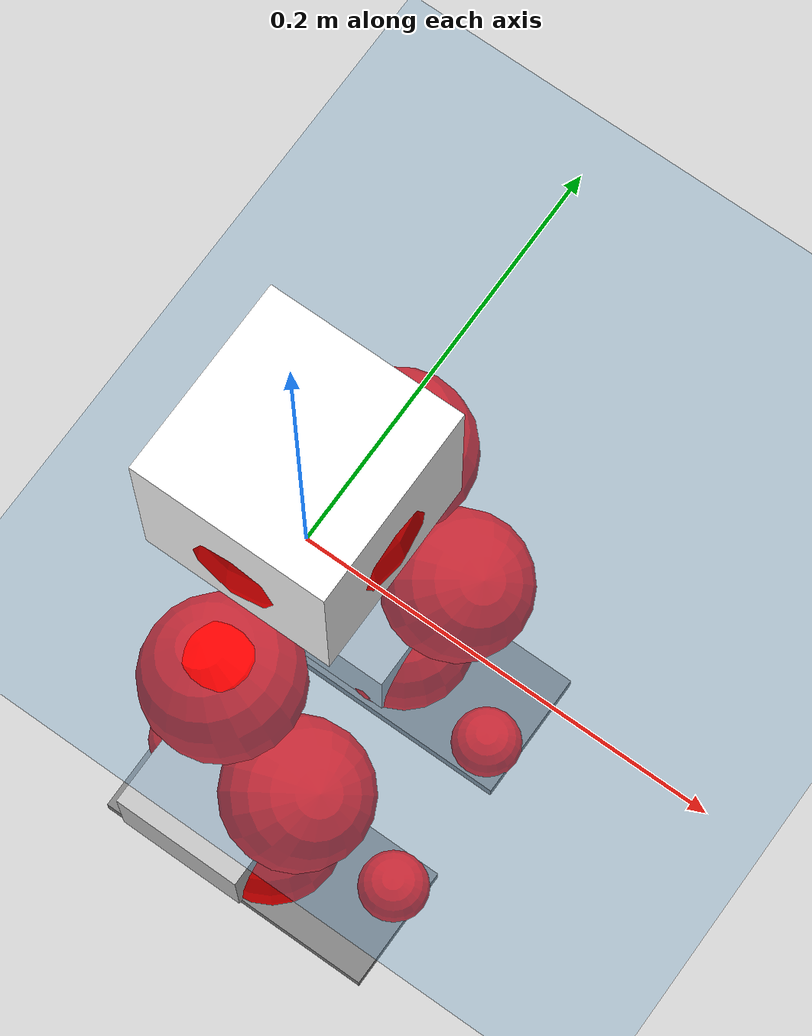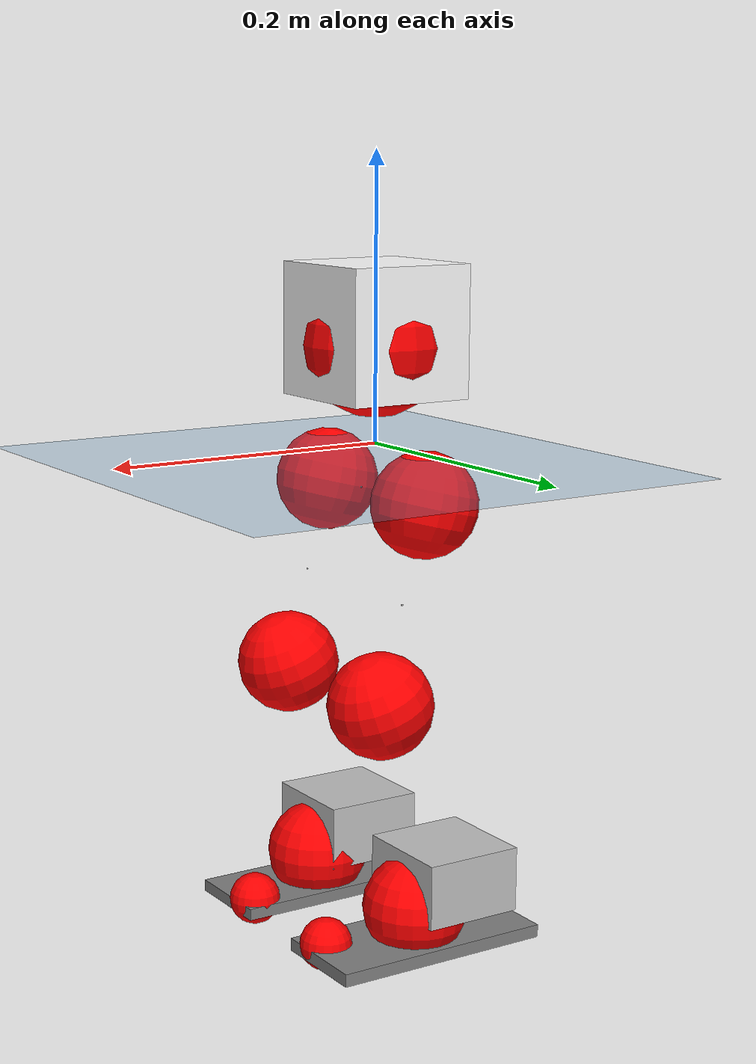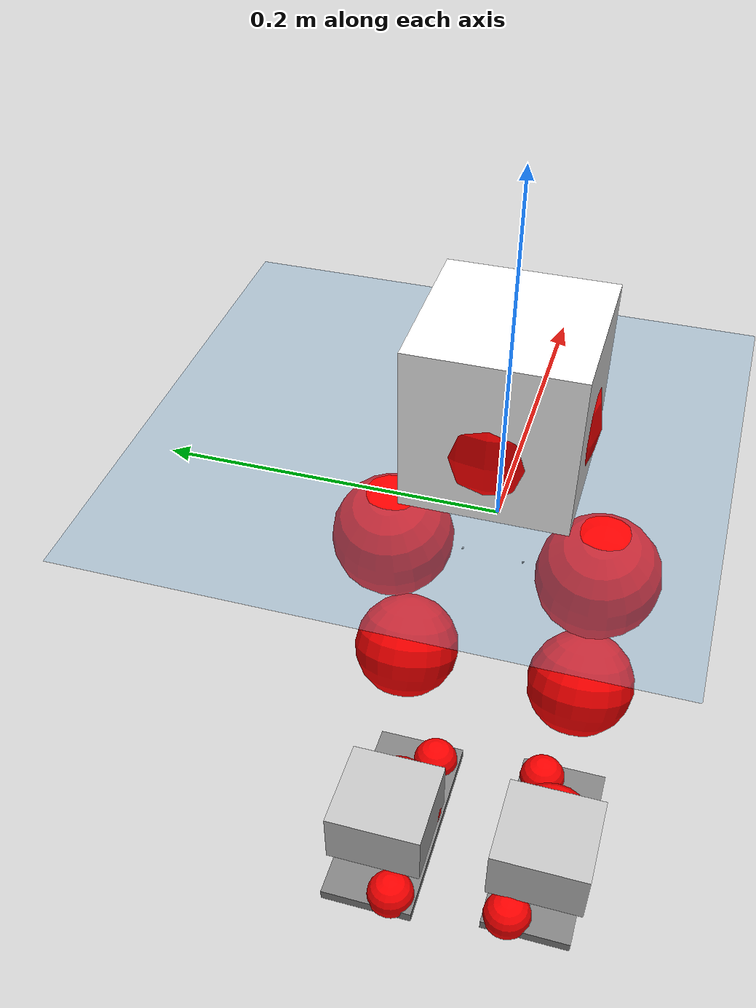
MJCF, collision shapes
<mujoco model="pi_12dof_release_v1">
  <compiler angle="radian" assetdir="assets" balanceinertia="true" inertiafromgeom="false"/>

  <option timestep="0.005" density="1.2" viscosity="2e-05"/>

  <size nkey="1"/>

  <visual>
    <quality shadowsize="8192"/>
    <map shadowclip="0.5"/>
  </visual>

  <default>
    <default class="/">
      <joint armature="0.01" damping="0.01" frictionloss="0.01"/>
      <geom contype="0" conaffinity="0" group="1" solref="-1000 -80"/>
      <site size="0.01 0.005 0.005" group="5"/>
      <general forcelimited="true" biastype="affine" gainprm="20" biasprm="0 -20 -0.5"/>
      <default class="foot">
        <geom size="0.0845 0.036 0.005" type="box" condim="6" group="4" priority="1" friction="0.9 0.2 0.2" solimp="0.015 1 0.005"/>
      </default>
      <default class="reward_collision_sphere">
        <geom group="5" rgba="1 0 0 1"/>
      </default>
    </default>
  </default>

  <asset>
    <texture type="skybox" colorspace="auto" name="//unnamed_texture_0" builtin="gradient" rgb1="0.95 0.95 0.95" rgb2="0.95 0.95 0.95" width="100" height="600"/>
    <texture type="2d" colorspace="auto" name="texplane" builtin="checker" rgb1="0.345 0.575 0.748" rgb2="0.345 0.575 0.748" markrgb="1 1 1" width="512" height="512"/>
    <material name="MatPlane" class="/" texture="texplane" texuniform="true" texrepeat="2 2" specular="0.9"/>
    <mesh name="baselink_1" class="/" file="baselink_1.STL"/>
    <mesh name="r_hip_pitch_link" class="/" file="r_hip_pitch_link.STL"/>
    <mesh name="r_hip_roll_link" class="/" file="r_hip_roll_link.STL"/>
    <mesh name="r_thigh_link" class="/" file="r_thigh_link.STL"/>
    <mesh name="r_calf_link" class="/" file="r_calf_link.STL"/>
    <mesh name="r_ankle_pitch_link" class="/" file="r_ankle_pitch_link.STL"/>
    <mesh name="r_ankle_roll_link" class="/" file="r_ankle_roll_link.STL"/>
    <mesh name="l_hip_pitch_link" class="/" file="l_hip_pitch_link.STL"/>
    <mesh name="l_hip_roll_link" class="/" file="l_hip_roll_link.STL"/>
    <mesh name="l_thigh_link" class="/" file="l_thigh_link.STL"/>
    <mesh name="l_calf_link" class="/" file="l_calf_link.STL"/>
    <mesh name="l_ankle_pitch_link" class="/" file="l_ankle_pitch_link.STL"/>
    <mesh name="l_ankle_roll_link" class="/" file="l_ankle_roll_link.STL"/>
  </asset>

  <worldbody>
    <geom name="floor" class="/" size="100 100 0.125" type="plane" group="0" material="MatPlane"/>
    <light name="toplight_shadow" class="/" pos="0 0 5" dir="0.0990148 0.0990148 -0.990148" type="directional" ambient="0.04 0.04 0.04" diffuse="0.55 0.55 0.55" specular="0.12 0.12 0.12"/>
    <light name="toplight_fill" class="/" pos="0 0 5" dir="0.0990148 0.0990148 -0.990148" type="directional" castshadow="false" ambient="0.04 0.04 0.04" diffuse="0.3 0.3 0.3" specular="0.08 0.08 0.08"/>
    <body name="trunk" pos="8.13093e-05 7.29697e-05 -0.000383208" quat="1 -1.30562e-05 -6.84762e-05 -1.58918e-05">
      <inertial pos="0.00269266 0.00131038 0.0408293" quat="0.695231 0.00992667 0.0092064 0.718659" mass="1.67422" diaginertia="0.00850469 0.0028827 0.00394823"/>
      <joint name="//unnamed_joint_0" type="free"/>
      <geom name="//unnamed_geom_1" class="/" type="mesh" density="0" rgba="1 1 1 1" mesh="baselink_1"/>
      <geom name="//unnamed_geom_2" class="/" size="0.0457965 0.0457965 0.0457965" pos="0 0 0.0790011" type="box" rgba="1 1 1 1"/>
      <geom name="//unnamed_geom_3" class="reward_collision_sphere" size="0.0503761" pos="0 0 0.0691259"/>
      <site name="imu" class="/" pos="-0.00496387 0.00285007 -0.00511278" size="0.00915929"/>
      <camera name="track" class="/" pos="0 -1.58704 0" quat="0.707107 0.707107 0 0" mode="trackcom"/>
      <camera name="ego_camera" class="/" pos="0.0725064 0 0.177752" quat="-0.5 -0.5 0.5 0.5"/>
      <body name="r_hip_pitch_link" pos="-0.000508168 -0.017558 -0.0331587" quat="0.992206 0.000390094 -0.124605 8.4045e-05">
        <inertial pos="-0.000301683 -0.0450131 0.000943021" quat="-0.0202126 0.706134 -0.0270822 0.707271" mass="0.289492" diaginertia="9.24919e-05 3.1419e-05 7.83448e-05"/>
        <joint name="r_hip_pitch_joint" class="/" pos="0 0 0" axis="0.0127632 -0.999917 -0.00160451" range="-1.75899 1.24661" armature="0.00937159" damping="0.0120042" frictionloss="0.00885261"/>
        <geom name="//unnamed_geom_4" class="/" type="mesh" density="0" rgba="0.75294 0.75294 0.75294 1" mesh="r_hip_pitch_link"/>
        <geom name="//unnamed_geom_5" class="/" size="0.000457965 0.000457965 0.000457965" type="box" rgba="0.75294 0.75294 0.75294 1"/>
        <body name="r_hip_roll_link" pos="0.000651713 -0.0441927 -0.000391628" quat="1 2.26183e-05 -6.48653e-05 -3.3857e-05">
          <inertial pos="-0.00134606 -0.000583635 -0.0604976" quat="0.705831 -0.0793048 -0.0824384 0.699083" mass="0.290517" diaginertia="0.000283196 8.66833e-05 0.000114956"/>
          <joint name="r_hip_roll_joint" class="/" pos="0 0 0" axis="-0.99999 -0.00346312 -0.00293054" range="-0.122683 0.486906" armature="0.00904556" damping="0.00527097" frictionloss="0.00894123"/>
          <geom name="//unnamed_geom_6" class="/" type="mesh" density="0" rgba="0.75294 0.75294 0.75294 1" mesh="r_hip_roll_link"/>
          <geom name="//unnamed_geom_7" class="/" size="0.000457965 0.000457965 0.000457965" type="box" rgba="0.75294 0.75294 0.75294 1"/>
          <geom name="//unnamed_geom_8" class="reward_collision_sphere" size="0.0366372"/>
          <body name="r_thigh_link" pos="0.000702436 0.00120285 -0.0670551" quat="1 0.00085318 -0.000151823 6.15121e-05">
            <inertial pos="0.000627028 0.000801767 -0.0467494" quat="0.737003 0.67589 -6.50058e-05 -0.00029795" mass="0.087036" diaginertia="0.000105693 2.92262e-05 5.42551e-05"/>
            <joint name="r_thigh_joint" class="/" pos="0 0 0" axis="-0.00202427 0.000769418 -0.999998" range="-0.303109 0.583104" armature="0.0096803" damping="0.00296009" frictionloss="0.00900867"/>
            <geom name="//unnamed_geom_9" class="/" type="mesh" density="0" rgba="0.75294 0.75294 0.75294 1" mesh="r_thigh_link"/>
            <geom name="//unnamed_geom_10" class="/" size="0.000457965 0.000457965 0.000457965" type="box" rgba="0.75294 0.75294 0.75294 1"/>
            <body name="r_calf_link" pos="-0.000956386 -0.000828861 -0.0686584" quat="0.947661 0.000160221 0.319278 -0.000564716">
              <inertial pos="-0.000423797 -0.00113237 -0.06885" quat="0.999984 -0.00310838 0.000103926 0.00470959" mass="0.605739" diaginertia="0.00289691 0.0010891 0.000163939"/>
              <joint name="r_calf_joint" class="/" pos="0 0 0" axis="-0.00926754 -0.999951 0.00359961" stiffness="0.00132197" range="-1.63123 0.648866" armature="0.00903057" damping="0.00648838" frictionloss="0.00951617"/>
              <geom name="//unnamed_geom_11" class="/" type="mesh" density="0" rgba="0.75294 0.75294 0.75294 1" mesh="r_calf_link"/>
              <geom name="//unnamed_geom_12" class="/" size="0.000457965 0.000457965 0.000457965" type="box" rgba="0.75294 0.75294 0.75294 1"/>
              <geom name="//unnamed_geom_13" class="reward_collision_sphere" size="0.0366372"/>
              <body name="r_ankle_pitch_link" pos="0.00298712 0.000416479 -0.138068" quat="0.979988 0.000193109 -0.199055 0.000188271">
                <inertial pos="0.00472089 0.00258839 -0.000306563" quat="0.00265478 0.707329 -0.00245386 0.706876" mass="0.140418" diaginertia="0.000261092 7.26518e-05 0.000115609"/>
                <joint name="r_ankle_pitch_joint" class="/" pos="0 0 0" axis="0.00303686 -0.999983 -0.00501789" range="-1.29776 0.482456" armature="0.00931738" damping="0.0182166" frictionloss="0.00975807"/>
                <geom name="//unnamed_geom_14" class="/" type="mesh" density="0" rgba="0.75294 0.75294 0.75294 1" mesh="r_ankle_pitch_link"/>
                <geom name="//unnamed_geom_15" class="/" size="0.0357212 0.0366372 0.0228982" type="box" rgba="0.75294 0.75294 0.75294 1"/>
                <body name="r_ankle_roll_link" pos="0.0761583 0.00156693 -0.00010144" quat="1 -2.99421e-05 -9.52697e-06 1.70337e-05">
                  <inertial pos="-0.0221436 0.00040905 -0.0121852" quat="0.561474 0.427304 0.435663 0.558888" mass="0.387527" diaginertia="0.000953359 0.000326133 0.000267452"/>
                  <joint name="r_ankle_roll_joint" class="/" pos="0 0 0" axis="-1 -0.000612881 4.91214e-06" range="-0.140358 0.147042" armature="0.00911796" damping="0.00676426" frictionloss="0.0101962"/>
                  <geom name="//unnamed_geom_16" class="/" type="mesh" density="0" rgba="0.75294 0.75294 0.75294 1" mesh="r_ankle_roll_link"/>
                  <geom name="//unnamed_geom_17" class="/" type="mesh" rgba="0.75294 0.75294 0.75294 1" mesh="r_ankle_roll_link"/>
                  <geom name="right_foot" class="foot" size="0.0780821 0.0338056 0.00420765" pos="-0.0493044 0 -0.0434506"/>
                  <geom name="//unnamed_geom_19" class="reward_collision_sphere" size="0.0366372" pos="-0.0483376 0 -0.0197503"/>
                  <geom name="//unnamed_geom_20" class="reward_collision_sphere" size="0.0183186" pos="0.0145013 0.0158704 -0.0395005"/>
                  <geom name="//unnamed_geom_21" class="reward_collision_sphere" size="0.0183186" pos="-0.11601 0.0158704 -0.0395005"/>
                  <site name="right_foot" class="foot" pos="-0.0493044 0 -0.0434506" size="0.00915929"/>
                </body>
              </body>
            </body>
          </body>
        </body>
      </body>
      <body name="l_hip_pitch_link" pos="0.000852252 0.0190819 -0.0326668" quat="0.992189 2.81397e-05 -0.124744 -6.75168e-06">
        <inertial pos="0.00174682 0.041206 -0.000427609" quat="-0.0498704 0.703023 0.0267417 0.708912" mass="0.290762" diaginertia="0.00010713 3.30983e-05 9.57798e-05"/>
        <joint name="l_hip_pitch_joint" class="/" pos="0 0 0" axis="0.00318824 0.999995 0.000666715" range="-1.22736 1.71765" armature="0.00903586" damping="0.00677796" frictionloss="0.00860303"/>
        <geom name="//unnamed_geom_22" class="/" type="mesh" density="0" rgba="0.75294 0.75294 0.75294 1" mesh="l_hip_pitch_link"/>
        <geom name="//unnamed_geom_23" class="/" size="0.000457965 0.000457965 0.000457965" type="box" rgba="0.75294 0.75294 0.75294 1"/>
        <body name="l_hip_roll_link" pos="-5.92476e-05 0.0428872 -0.000123145" quat="1 0.000130071 0.000426726 0.000132123">
          <inertial pos="-0.00129212 -0.000318457 -0.0602562" quat="0.702631 -0.0744462 -0.0795192 0.703168" mass="0.301569" diaginertia="0.000287766 8.99977e-05 0.000122258"/>
          <joint name="l_hip_roll_joint" class="/" pos="0 0 0" axis="-0.999981 -0.00555235 -0.00285145" range="-0.45403 0.078134" armature="0.00902797" damping="0.00250397" frictionloss="0.00940939"/>
          <geom name="//unnamed_geom_24" class="/" type="mesh" density="0" rgba="0.75294 0.75294 0.75294 1" mesh="l_hip_roll_link"/>
          <geom name="//unnamed_geom_25" class="/" size="0.000457965 0.000457965 0.000457965" type="box" rgba="0.75294 0.75294 0.75294 1"/>
          <geom name="//unnamed_geom_26" class="reward_collision_sphere" size="0.0366372"/>
          <body name="l_thigh_link" pos="0.000186862 -0.000279437 -0.0687457" quat="1 -0.00057236 0.000115736 -0.000232012">
            <inertial pos="0.00145131 -0.000413483 -0.0475087" quat="0.67548 0.737378 3.39369e-06 -0.000202862" mass="0.0874724" diaginertia="0.000109938 3.13548e-05 5.77165e-05"/>
            <joint name="l_thigh_joint" class="/" pos="0 0 0" axis="-0.00171802 0.00230561 -0.999996" range="-0.61362 0.270644" armature="0.00951703" damping="0.00887438" frictionloss="0.00897581"/>
            <geom name="//unnamed_geom_27" class="/" type="mesh" density="0" rgba="0.75294 0.75294 0.75294 1" mesh="l_thigh_link"/>
            <geom name="//unnamed_geom_28" class="/" size="0.000457965 0.000457965 0.000457965" type="box" rgba="0.75294 0.75294 0.75294 1"/>
            <body name="l_calf_link" pos="0.000207412 0.000765993 -0.0697546" quat="0.947855 -0.000335944 0.318701 5.65352e-05">
              <inertial pos="0.000553766 0.00152064 -0.0685481" quat="0.999958 0.00646076 -0.00151536 -0.00624683" mass="0.630554" diaginertia="0.0029661 0.0011118 0.000164211"/>
              <joint name="l_calf_joint" class="/" pos="0 0 0" axis="-4.77609e-05 1 0.000155613" range="-0.657873 1.6696" armature="0.00929608" damping="0.0047152" frictionloss="0.00919687"/>
              <geom name="//unnamed_geom_29" class="/" type="mesh" density="0" rgba="0.75294 0.75294 0.75294 1" mesh="l_calf_link"/>
              <geom name="//unnamed_geom_30" class="/" size="0.000457965 0.000457965 0.000457965" type="box" rgba="0.75294 0.75294 0.75294 1"/>
              <geom name="//unnamed_geom_31" class="reward_collision_sphere" size="0.0366372"/>
              <body name="l_ankle_pitch_link" pos="0.000824116 0.000179262 -0.140602" quat="0.980086 0.000133599 -0.198575 -0.000159423">
                <inertial pos="0.00463342 0.00162931 -0.00069393" quat="0.00220209 0.7072 0.00153777 0.707008" mass="0.130877" diaginertia="0.000251272 6.7977e-05 0.00010846"/>
                <joint name="l_ankle_pitch_joint" class="/" pos="0 0 0" axis="0.00129952 0.99995 -0.00990028" range="-0.497032 1.29558" armature="0.00900624" damping="0" frictionloss="0.0093476"/>
                <geom name="//unnamed_geom_32" class="/" type="mesh" density="0" rgba="0.75294 0.75294 0.75294 1" mesh="l_ankle_pitch_link"/>
                <geom name="//unnamed_geom_33" class="/" size="0.0357212 0.0366372 0.0228982" type="box" rgba="0.75294 0.75294 0.75294 1"/>
                <body name="l_ankle_roll_link" pos="0.0719965 -0.000845265 -0.000506808" quat="1 -0.000103514 -0.00027056 -0.00018658">
                  <inertial pos="-0.024579 -0.000636354 -0.0145078" quat="0.561618 0.437959 0.427092 0.557108" mass="0.393708" diaginertia="0.000964411 0.000331159 0.000276515"/>
                  <joint name="l_ankle_roll_joint" class="/" pos="0 0 0" axis="-0.999926 -0.00962386 -0.00741357" range="-0.15773 0.104355" armature="0.00920091" damping="0.0100811" frictionloss="0.00809529"/>
                  <geom name="//unnamed_geom_34" class="/" type="mesh" density="0" rgba="0.75294 0.75294 0.75294 1" mesh="l_ankle_roll_link"/>
                  <geom name="//unnamed_geom_35" class="/" type="mesh" rgba="0.75294 0.75294 0.75294 1" mesh="l_ankle_roll_link"/>
                  <geom name="left_foot" class="foot" size="0.0801898 0.0354224 0.00451041" pos="-0.0493044 0 -0.0434506"/>
                  <geom name="//unnamed_geom_37" class="reward_collision_sphere" size="0.0366372" pos="-0.0483376 0 -0.0197503"/>
                  <geom name="//unnamed_geom_38" class="reward_collision_sphere" size="0.0183186" pos="0.0145013 -0.0158704 -0.0395005"/>
                  <geom name="//unnamed_geom_39" class="reward_collision_sphere" size="0.0183186" pos="-0.11601 -0.0158704 -0.0395005"/>
                  <site name="left_foot" class="foot" pos="-0.0493044 0 -0.0434506" size="0.00915929"/>
                </body>
              </body>
            </body>
          </body>
        </body>
      </body>
    </body>
  </worldbody>

  <contact>
    <pair class="/" geom1="floor" geom2="right_foot" name="//unnamed_contact_1"/>
    <pair class="/" geom1="floor" geom2="left_foot" name="//unnamed_contact_0"/>
  </contact>

  <actuator>
    <general name="r_hip_pitch_joint" class="/" joint="r_hip_pitch_joint" forcerange="-19.0018 19.0018" gainprm="18.8456" biasprm="0 -18.8456 -0.446369"/>
    <general name="r_hip_roll_joint" class="/" joint="r_hip_roll_joint" forcerange="-19.1537 19.1537" gainprm="18.8456" biasprm="0 -18.8456 -0.446369"/>
    <general name="r_thigh_joint" class="/" joint="r_thigh_joint" forcerange="-19.457 19.457" gainprm="18.8456" biasprm="0 -18.8456 -0.446369"/>
    <general name="r_calf_joint" class="/" joint="r_calf_joint" forcerange="-18.5179 18.5179" gainprm="18.8456" biasprm="0 -18.8456 -0.446369"/>
    <general name="r_ankle_pitch_joint" class="/" joint="r_ankle_pitch_joint" forcerange="-19.1424 19.1424" gainprm="18.8456" biasprm="0 -18.8456 -0.446369"/>
    <general name="r_ankle_roll_joint" class="/" joint="r_ankle_roll_joint" forcerange="-20.4507 20.4507" gainprm="18.8456" biasprm="0 -18.8456 -0.446369"/>
    <general name="l_hip_pitch_joint" class="/" joint="l_hip_pitch_joint" forcerange="-19.6682 19.6682" gainprm="18.8456" biasprm="0 -18.8456 -0.446369"/>
    <general name="l_hip_roll_joint" class="/" joint="l_hip_roll_joint" forcerange="-17.5922 17.5922" gainprm="18.8456" biasprm="0 -18.8456 -0.446369"/>
    <general name="l_thigh_joint" class="/" joint="l_thigh_joint" forcerange="-18.7984 18.7984" gainprm="18.8456" biasprm="0 -18.8456 -0.446369"/>
    <general name="l_calf_joint" class="/" joint="l_calf_joint" forcerange="-19.8314 19.8314" gainprm="18.8456" biasprm="0 -18.8456 -0.446369"/>
    <general name="l_ankle_pitch_joint" class="/" joint="l_ankle_pitch_joint" forcerange="-18.5186 18.5186" gainprm="18.8456" biasprm="0 -18.8456 -0.446369"/>
    <general name="l_ankle_roll_joint" class="/" joint="l_ankle_roll_joint" forcerange="-19.8525 19.8525" gainprm="18.8456" biasprm="0 -18.8456 -0.446369"/>
  </actuator>

  <sensor>
    <gyro site="imu" name="imu_angular_velocity"/>
    <velocimeter site="imu" name="imu_linear_velocity"/>
    <framelinvel objtype="site" objname="left_foot" name="left_foot_global_linear_velocity"/>
    <framelinvel objtype="site" objname="right_foot" name="right_foot_global_linear_velocity"/>
  </sensor>

  <keyframe>
    <key name="home" qpos="0 0 0.291 1 0 0 0 0.4 0 0 -0.8 0.4 0 -0.4 0 0 0.8 -0.4 0"/>
  </keyframe>
</mujoco>
